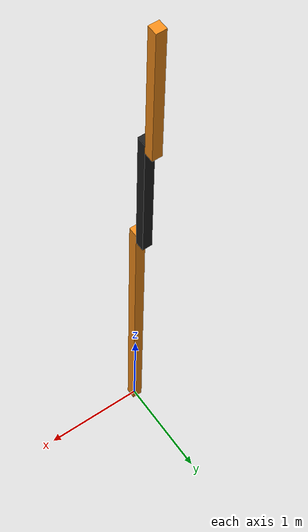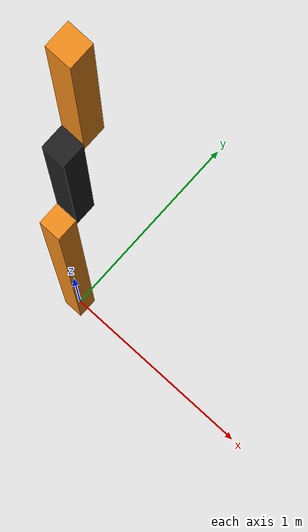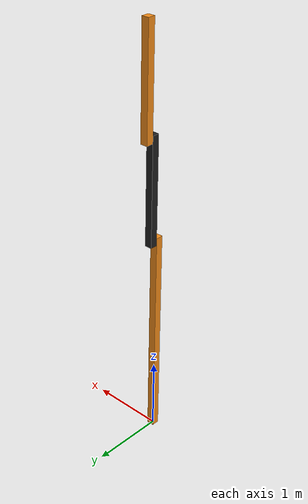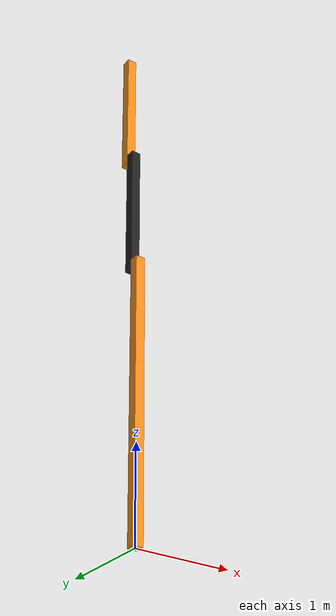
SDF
<sdf version='1.6'>
  <model name='pendulum'>
    <link name='link1'>
      <pose frame=''>0 0 0 0 -0 0</pose>
      <inertial>
        <pose frame=''>0 0 1.5 0 -0 0</pose>
        <mass>1</mass>
        <inertia>
          <ixx>1</ixx>
          <ixy>0</ixy>
          <ixz>0</ixz>
          <iyy>1</iyy>
          <iyz>0</iyz>
          <izz>1</izz>
        </inertia>
      </inertial>
      <collision name='link1_collision'>
        <pose frame=''>0 0 1.5 0 -0 0</pose>
        <geometry>
          <box>
            <size>0.1 0.1 3</size>
          </box>
        </geometry>
        <surface>
          <contact>
            <ode/>
          </contact>
          <friction>
            <ode/>
          </friction>
        </surface>
      </collision>
      <visual name='link1_visual'>
        <pose frame=''>0 0 1.5 0 -0 0</pose>
        <geometry>
          <box>
            <size>0.1 0.1 3</size>
          </box>
        </geometry>
        <material>
          <script>
            <name>Gazebo/Orange</name>
            <uri>file://media/materials/scripts/gazebo.material</uri>
          </script>
        </material>
      </visual>
      <gravity>1</gravity>
      <velocity_decay/>
      <self_collide>0</self_collide>
    </link>
    <joint name='fixed' type='revolute'>
      <child>link1</child>
      <parent>world</parent>
      <axis>
        <limit>
          <lower>0</lower>
          <upper>0</upper>
        </limit>
        <dynamics>
          <damping>0.2</damping>
          <friction>0</friction>
          <spring_reference>0</spring_reference>
          <spring_stiffness>0</spring_stiffness>
        </dynamics>
        <use_parent_model_frame>1</use_parent_model_frame>
        <xyz>0 0 1</xyz>
      </axis>
    </joint>
    <link name='link2'>
      <pose frame=''>0 0.1 2.95 0 -0 0</pose>
      <inertial>
        <pose frame=''>0 0 0.7 0 -0 0</pose>
        <mass>1</mass>
        <inertia>
          <ixx>0.01</ixx>
          <ixy>0</ixy>
          <ixz>0</ixz>
          <iyy>0.01</iyy>
          <iyz>0</iyz>
          <izz>0.01</izz>
        </inertia>
      </inertial>
      <collision name='link2_collision'>
        <pose frame=''>0 0 0.7 0 -0 0</pose>
        <geometry>
          <box>
            <size>0.1 0.1 1.5</size>
          </box>
        </geometry>
        <surface>
          <contact>
            <ode/>
          </contact>
          <friction>
            <ode>
              <mu>0.2</mu>
              <mu2>0.2</mu2>
            </ode>
          </friction>
        </surface>
      </collision>
      <visual name='link2_visual'>
        <pose frame=''>0 0 0.7 0 -0 0</pose>
        <geometry>
          <box>
            <size>0.1 0.1 1.5</size>
          </box>
        </geometry>
        <material>
          <script>
            <name>Gazebo/Black</name>
            <uri>file://media/materials/scripts/gazebo.material</uri>
          </script>
        </material>
      </visual>
      <gravity>1</gravity>
      <velocity_decay/>
      <self_collide>0</self_collide>
    </link>
    <joint name='joint1' type='revolute'>
      <child>link2</child>
      <parent>link1</parent>
      <axis>
        <xyz>0 1 0</xyz>
        <limit>
          <lower>-1e+16</lower>
          <upper>1e+16</upper>
        </limit>
        <dynamics>
          <damping>1</damping>
          <friction>0</friction>
          <spring_reference>0</spring_reference>
          <spring_stiffness>0</spring_stiffness>
        </dynamics>
        <use_parent_model_frame>1</use_parent_model_frame>
      </axis>
    </joint>

    <link name='link3'>
      <pose frame=''>0 0.2 4.35 0 -0 0</pose>
      <inertial>
        <pose frame=''>0 0 0.7 0 -0 0</pose>
        <mass>1</mass>
        <inertia>
          <ixx>0.01</ixx>
          <ixy>0</ixy>
          <ixz>0</ixz>
          <iyy>0.01</iyy>
          <iyz>0</iyz>
          <izz>0.01</izz>
        </inertia>
      </inertial>
      <collision name='link3_fixed_joint_lump__link_collision_collision'>
        <pose frame=''>0 0 0.7 0 -0 0</pose>
        <geometry>
          <box>
            <size>0.1 0.1 1.5</size>
          </box>
        </geometry>
      </collision>
      <sensor type="contact" name="link_contact">
      	<always_on>true</always_on>
      	<update_rate>300.0</update_rate>
      	<contact>
        	<collision>link3_fixed_joint_lump__link_collision_collision</collision>
      	</contact>
      	<plugin name="contact_plugin" filename="libcontact_pendulum.so"/>
    	</sensor>
      <visual name='link3_visual'>
        <pose frame=''>0 0 0.7 0 -0 0</pose>
        <geometry>
          <box>
            <size>0.1 0.1 1.5</size>
          </box>
        </geometry>
        <material>
          <script>
            <name>Gazebo/Orange</name>
            <uri>file://media/materials/scripts/gazebo.material</uri>
          </script>
        </material>
      </visual>
      <velocity_decay/>
      <gravity>1</gravity>
      <velocity_decay/>
      <self_collide>0</self_collide>
    </link>

    <joint name='joint2' type='revolute'>
      <child>link3</child>
      <parent>link2</parent>
      <axis>
        <xyz>0 1 0</xyz>
        <limit>
          <lower>-1e+16</lower>
          <upper>1e+16</upper>
        </limit>
        <dynamics>
          <damping>1</damping>
          <friction>0</friction>
          <spring_reference>0</spring_reference>
          <spring_stiffness>0</spring_stiffness>
        </dynamics>
        <use_parent_model_frame>1</use_parent_model_frame>
      </axis>
    </joint>
    <static>0</static>
    <plugin name='gazebo_ros_control' filename='libgazebo_ros_control.so'>
      <robotNamespace>/pendulum</robotNamespace>
    </plugin>
  </model>
</sdf>
